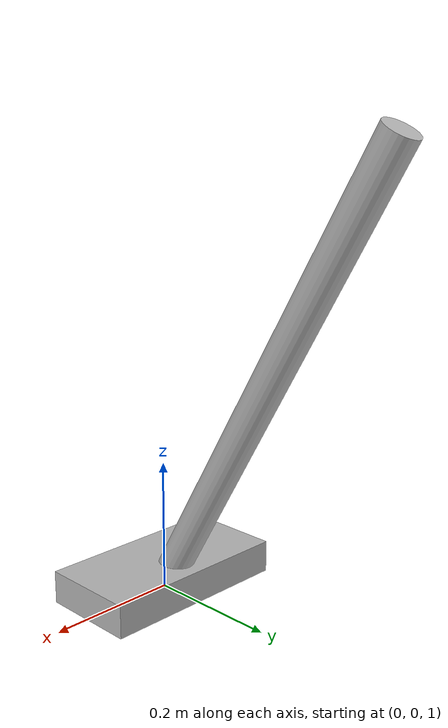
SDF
<?xml version="1.0"?>
<sdf version="1.7">
  <model name="broom">
    <pose>0 0 1 0 0 0</pose>

    <link name="handle_link">
      <visual name="handle_visual">
        <geometry>
          <cylinder>
            <radius>0.025</radius>
            <length>0.75</length>
          </cylinder>
        </geometry>
        <pose>0  0.2 0.35 -0.5236 0 0</pose>
      </visual>
      <collision name="handle_collision">
        <geometry>
          <cylinder>
            <radius>0.025</radius>
            <length>0.75</length>
          </cylinder>
        </geometry>
        <pose>0  0.2 0.35 -0.5236 0 0</pose>
        <surface>
          <friction>
            <ode>
              <mu>0.0</mu>      <!-- add friction -->
              <mu2>0.0</mu2>
            </ode>
          </friction>
        </surface>
      </collision>
    </link>

    <link name="base_link">
      <visual name="base_visual">
        <geometry>
          <box>
            <size>0.3 0.15 0.05</size>
          </box>
        </geometry>
      </visual>
      <collision name="base_collision">
        <geometry>
          <box>
            <size>0.3 0.15 0.05</size>
          </box>
        </geometry>
      </collision>
      <pose>0 0 0.025 0 0 0</pose>
    </link>

    <joint name="handle_to_base" type="fixed">
      <parent>handle_link</parent>
      <child>base_link</child>
      <pose>0 0 0 0 0 0</pose>
    </joint>
  </model>
</sdf>
